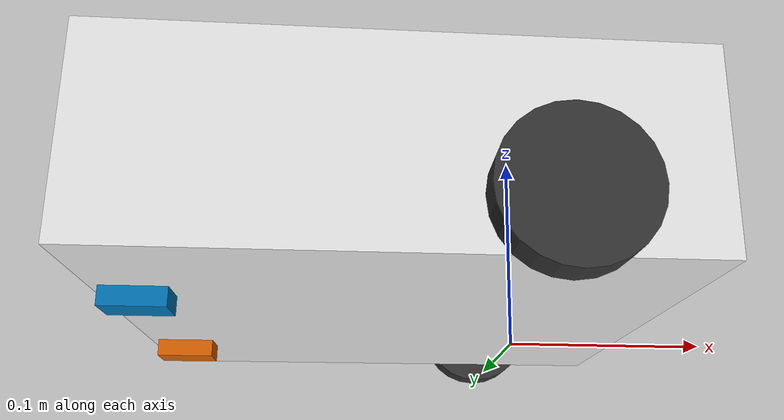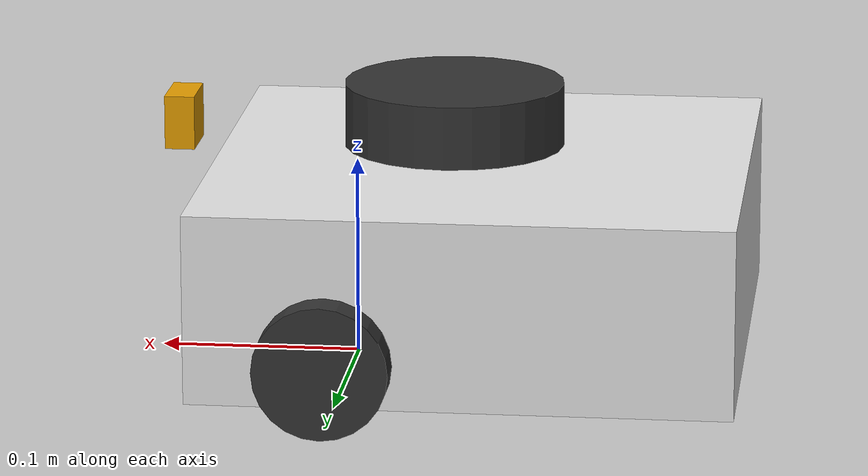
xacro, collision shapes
<?xml version="1.0"?>
<robot name="turtlebot3_waffle_pi" xmlns:xacro="http://ros.org/wiki/xacro">

  <xacro:macro name="material_light_black">
    <visual>
      <material>
        <diffuse>0.1 0.1 0.1 1</diffuse>
        <specular>0.1 0.1 0.1 1</specular>
        <emissive>0 0 0 1</emissive>
      </material>
    </visual>
  </xacro:macro>

  <xacro:macro name="material_darkgray">
    <visual>
      <material>
        <diffuse>0.05 0.05 0.05 1</diffuse>
        <specular>0.05 0.05 0.05 1</specular>
        <emissive>0 0 0 1</emissive>
      </material>
    </visual>
  </xacro:macro>

  <xacro:macro name="ray_sensor"
    params="sensor_name gazebo update_rate visualize
            h_samples h_res h_min_angle h_max_angle
            r_min r_max r_res *plugin">
    <sensor name="${sensor_name}" type="gpu_lidar">
      <update_rate>${update_rate}</update_rate>
      <visualize>${visualize}</visualize>
      <always_on>true</always_on>
      <gz_frame_id>${sensor_name}_link</gz_frame_id>
      <topic>scan</topic>
      <lidar>
        <scan>
          <horizontal>
            <samples>${h_samples}</samples>
            <resolution>${h_res}</resolution>
            <min_angle>${h_min_angle}</min_angle>
            <max_angle>${h_max_angle}</max_angle>
          </horizontal>
        </scan>
        <range>
          <min>${r_min}</min>
          <max>${r_max}</max>
          <resolution>${r_res}</resolution>
        </range>
      </lidar>
    </sensor>
  </xacro:macro>

  <!-- Init colour -->
  <material name="dark">
    <color rgba="0.2 0.2 0.2 1.0" />
  </material>
  <material name="light_black">
    <color rgba="0.9 0.9 0.9 1.0" />
  </material>

  <!-- Gazebo version -->
  <xacro:arg name="gazebo" default="ignition" />

  <!-- Namespace -->
  <xacro:arg name="namespace" default="" />

  <link name="base_footprint" />

  <joint name="base_joint" type="fixed">
    <parent link="base_footprint" />
    <child link="base_link" />
    <origin xyz="0 0 0.010" rpy="0 0 0" />
  </joint>

  <link name="base_link">
    <visual>
      <origin xyz="-0.064 0 0.0" rpy="0 0 0" />
      <geometry>
        <mesh filename="package://turtlebot3_description/meshes/bases/waffle_pi_base.stl"
          scale="0.001 0.001 0.001" />
      </geometry>
      <material name="light_black" />
    </visual>
    <collision>
      <origin xyz="-0.064 0 0.047" rpy="0 0 0" />
      <geometry>
        <box size="0.266 0.266 0.094" />
      </geometry>
    </collision>
    <inertial>
      <origin xyz="0 0 0" rpy="0 0 0" />
      <mass value="1.3729096e+00" />
      <inertia ixx="8.7002718e-03" ixy="-4.7576583e-05" ixz="1.1160499e-04"
        iyy="8.6195418e-03" iyz="-3.5422299e-06"
        izz="1.4612727e-02" />
    </inertial>
  </link>

  <gazebo reference="base_link">
    <xacro:material_light_black />
  </gazebo>

  <joint name="wheel_left_joint" type="continuous">
    <parent link="base_link" />
    <child link="wheel_left_link" />
    <origin xyz="0.0 0.144 0.023" rpy="-1.57 0 0" />
    <axis xyz="0 0 1" />
  </joint>

  <link name="wheel_left_link">
    <visual>
      <origin xyz="0 0 0" rpy="1.57 0 0" />
      <geometry>
        <mesh filename="package://turtlebot3_description/meshes/wheels/left_tire.stl"
          scale="0.001 0.001 0.001" />
      </geometry>
      <material name="dark" />
    </visual>
    <collision>
      <origin xyz="0 0 0" rpy="0 0 0" />
      <geometry>
        <cylinder length="0.018" radius="0.033" />
      </geometry>
    </collision>
    <inertial>
      <origin xyz="0 0 0" />
      <mass value="2.8498940e-02" />
      <inertia ixx="1.1175580e-05" ixy="-4.2369783e-11" ixz="-5.9381719e-09"
        iyy="1.1192413e-05" iyz="-1.4400107e-11"
        izz="2.0712558e-05" />
    </inertial>
  </link>

  <gazebo reference="wheel_left_link">
    <xacro:material_darkgray />
  </gazebo>

  <joint name="wheel_right_joint" type="continuous">
    <parent link="base_link" />
    <child link="wheel_right_link" />
    <origin xyz="0.0 -0.144 0.023" rpy="-1.57 0 0" />
    <axis xyz="0 0 1" />
  </joint>

  <link name="wheel_right_link">
    <visual>
      <origin xyz="0 0 0" rpy="1.57 0 0" />
      <geometry>
        <mesh filename="package://turtlebot3_description/meshes/wheels/right_tire.stl"
          scale="0.001 0.001 0.001" />
      </geometry>
      <material name="dark" />
    </visual>
    <collision>
      <origin xyz="0 0 0" rpy="0 0 0" />
      <geometry>
        <cylinder length="0.018" radius="0.033" />
      </geometry>
    </collision>
    <inertial>
      <origin xyz="0 0 0" />
      <mass value="2.8498940e-02" />
      <inertia ixx="1.1175580e-05" ixy="-4.2369783e-11" ixz="-5.9381719e-09"
        iyy="1.1192413e-05" iyz="-1.4400107e-11"
        izz="2.0712558e-05" />
    </inertial>
  </link>

  <gazebo reference="wheel_right_link">
    <xacro:material_darkgray />
  </gazebo>

  <joint name="caster_back_right_joint" type="fixed">
    <parent link="base_link" />
    <child link="caster_back_right_link" />
    <origin xyz="-0.177 -0.064 -0.004" rpy="-1.57 0 0" />
  </joint>
  <link name="caster_back_right_link">
    <collision>
      <origin xyz="0 0.001 0" rpy="0 0 0" />
      <geometry>
        <box size="0.030 0.009 0.020" />
      </geometry>
    </collision>
    <inertial>
      <origin xyz="0 0 0" />
      <mass value="0.005" />
      <inertia ixx="0.001" ixy="0.0" ixz="0.0"
        iyy="0.001" iyz="0.0"
        izz="0.001" />
    </inertial>
  </link>

  <joint name="caster_back_left_joint" type="fixed">
    <parent link="base_link" />
    <child link="caster_back_left_link" />
    <origin xyz="-0.177 0.064 -0.004" rpy="-1.57 0 0" />
  </joint>

  <link name="caster_back_left_link">
    <collision>
      <origin xyz="0 0.001 0" rpy="0 0 0" />
      <geometry>
        <box size="0.030 0.009 0.020" />
      </geometry>
    </collision>
    <inertial>
      <origin xyz="0 0 0" />
      <mass value="0.005" />
      <inertia ixx="0.001" ixy="0.0" ixz="0.0"
        iyy="0.001" iyz="0.0"
        izz="0.001" />
    </inertial>
  </link>

  <joint name="imu_joint" type="fixed">
    <parent link="base_link" />
    <child link="imu_link" />
    <origin xyz="0.0 0 0.068" rpy="0 0 0" />
  </joint>

  <link name="imu_link" />

  <joint name="scan_joint" type="fixed">
    <parent link="base_link" />
    <child link="scan_link" />
    <origin xyz="-0.064 0 0.122" rpy="0 0 0" />
  </joint>

  <link name="scan_link">
    <visual>
      <origin xyz="0 0 0.0" rpy="0 0 0" />
      <geometry>
        <mesh filename="package://turtlebot3_description/meshes/sensors/lds.stl"
          scale="0.001 0.001 0.001" />
      </geometry>
      <material name="dark" />
    </visual>
    <collision>
      <origin xyz="0.015 0 -0.0065" rpy="0 0 0" />
      <geometry>
        <cylinder length="0.0315" radius="0.055" />
      </geometry>
    </collision>
    <inertial>
      <mass value="0.114" />
      <origin xyz="0 0 0" />
      <inertia ixx="0.001" ixy="0.0" ixz="0.0"
        iyy="0.001" iyz="0.0"
        izz="0.001" />
    </inertial>
  </link>

  <gazebo reference="scan_link">
    <xacro:ray_sensor sensor_name="scan" gazebo="ignition"
      update_rate="10.0" visualize="true"
      h_samples="360" h_res="1.0" h_min_angle="0.000" h_max_angle="6.280000"
      r_min="0.164" r_max="20.0" r_res="0.01">
      <plugin name="dummy" filename="dummyfile"></plugin>
    </xacro:ray_sensor>
    <xacro:material_darkgray />
  </gazebo>

  <gazebo reference="scan_joint">
    <preserveFixedJoint>true</preserveFixedJoint>
  </gazebo>

  <joint name="camera_joint" type="fixed">
    <origin xyz="0.083 -0.0 0.097" rpy="0 0 0" />
    <parent link="base_link" />
    <child link="camera_link" />
  </joint>

  <link name="camera_link">
    <collision>
      <origin xyz="0.005 0.0 0.013" rpy="0 0 0" />
      <geometry>
        <box size="0.015 0.030 0.027" />
      </geometry>
    </collision>
    <visual>
      <geometry>
        <box size="0.015 0.03 0.027" />
      </geometry>
    </visual>
  </link>

  <joint name="camera_rgb_joint" type="fixed">
    <origin xyz="0.01 0.0 0.0" rpy="0 0 0" />
    <parent link="camera_link" />
    <child link="camera_rgb_frame" />
  </joint>

  <link name="camera_rgb_frame">
  </link>

  <joint name="camera_rgb_optical_joint" type="fixed">
    <origin xyz="0 0 0" rpy="-1.57 0 -1.57" />
    <parent link="camera_rgb_frame" />
    <child link="camera_rgb_optical_frame" />
  </joint>
  <link name="camera_rgb_optical_frame" />

  <gazebo>
    <plugin
      filename="gz-sim-diff-drive-system"
      name="gz::sim::systems::DiffDrive">
      <left_joint>wheel_left_joint</left_joint>
      <right_joint>wheel_right_joint</right_joint>
      <wheel_separation>0.287</wheel_separation>
      <wheel_radius>0.033</wheel_radius>
      <max_linear_acceleration>2</max_linear_acceleration>
      <min_linear_acceleration>-2</min_linear_acceleration>
      <max_angular_acceleration>3</max_angular_acceleration>
      <min_angular_acceleration>-3</min_angular_acceleration>
      <max_linear_velocity>0.5</max_linear_velocity>
      <min_linear_velocity>-0.5</min_linear_velocity>
      <max_angular_velocity>2.0</max_angular_velocity>
      <min_angular_velocity>-2.0</min_angular_velocity>
      <topic>cmd_vel</topic>
      <odom_topic>odom</odom_topic>
      <tf_topic>tf</tf_topic>
      <frame_id>odom</frame_id>
      <child_frame_id>base_footprint</child_frame_id>
      <odom_publish_frequency>30</odom_publish_frequency>
    </plugin>

    <plugin
      filename="gz-sim-joint-state-publisher-system"
      name="gz::sim::systems::JointStatePublisher">
      <joint_name>wheel_left_joint</joint_name>
      <joint_name>wheel_right_joint</joint_name>
      <topic>joint_states</topic>
      <update_rate>30</update_rate>
    </plugin>

  </gazebo>

  <gazebo reference="imu_link">
    <sensor type="imu" name="imu">
      <always_on>true</always_on>
      <update_rate>100</update_rate>
      <topic>imu</topic>
      <imu>
        <angular_velocity>
          <x>
            <noise type="gaussian">
              <mean>0.0</mean>
              <stddev>2e-4</stddev>
            </noise>
          </x>
          <y>
            <noise type="gaussian">
              <mean>0.0</mean>
              <stddev>2e-4</stddev>
            </noise>
          </y>
          <z>
            <noise type="gaussian">
              <mean>0.0</mean>
              <stddev>2e-4</stddev>
            </noise>
          </z>
        </angular_velocity>
        <linear_acceleration>
          <x>
            <noise type="gaussian">
              <mean>0.0</mean>
              <stddev>2e-4</stddev>
            </noise>
          </x>
          <y>
            <noise type="gaussian">
              <mean>0.0</mean>
              <stddev>2e-4</stddev>
            </noise>
          </y>
          <z>
            <noise type="gaussian">
              <mean>0.0</mean>
              <stddev>2e-4</stddev>
            </noise>
          </z>
        </linear_acceleration>
      </imu>
    </sensor>
  </gazebo>

  <gazebo reference="camera_link">
    <sensor name="rgbd_camera" type="rgbd_camera">
      <always_on>1</always_on>
      <camera>
        <horizontal_fov>1.25</horizontal_fov>
        <image>
          <width>640</width>
          <height>480</height>
        </image>
        <clip>
          <near>0.3</near>
          <far>100</far>
        </clip>
        <optical_frame_id>camera_rgb_optical_frame</optical_frame_id>
      </camera>
      <update_rate>10</update_rate>
      <visualize>true</visualize>
      <topic>rgbd_camera</topic>
    </sensor>
    <xacro:material_darkgray />
  </gazebo>

</robot>
